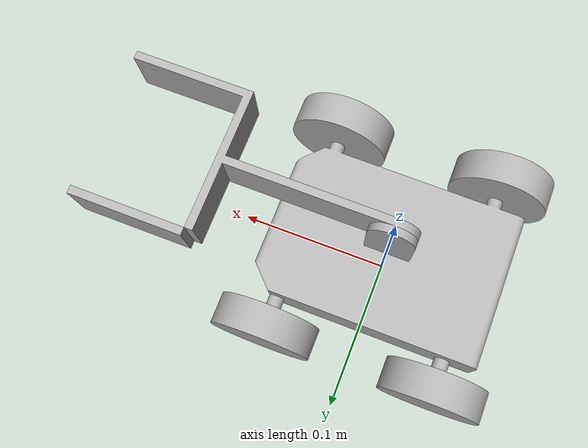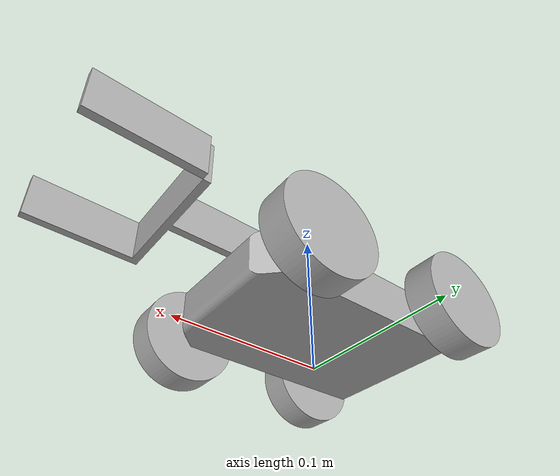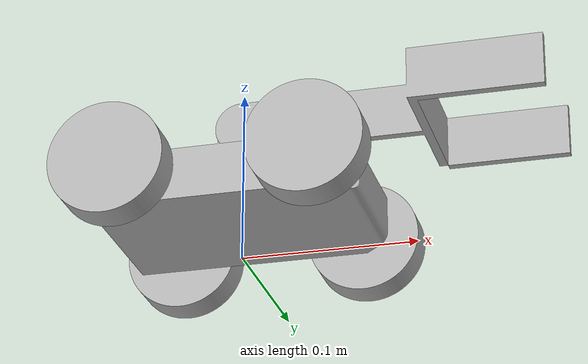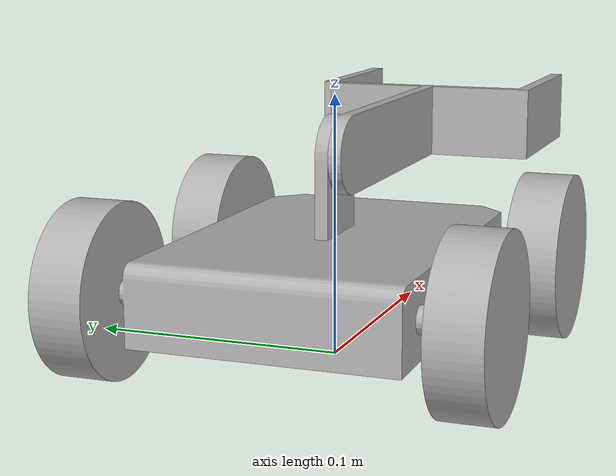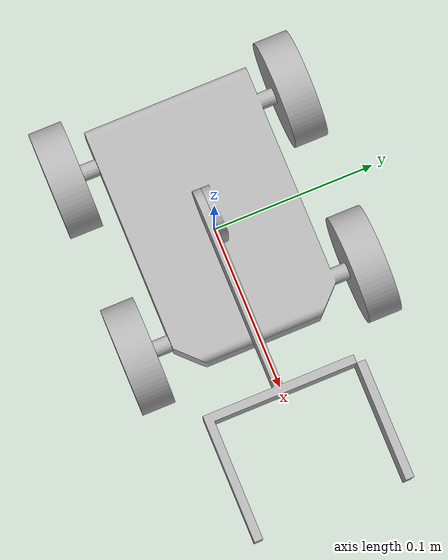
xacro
<?xml version="1.0" ?>
<robot name="gripper_bot" xmlns:xacro="http://www.ros.org/wiki/xacro">

<xacro:include filename="$(find gripper_bot_description)/urdf/materials.xacro" />
<xacro:include filename="$(find gripper_bot_description)/urdf/gripper_bot.trans" />
<xacro:include filename="$(find gripper_bot_description)/urdf/gripper_bot.gazebo" />

<link name="base_link">
  <inertial>
    <origin rpy="0 0 0" xyz="-0.0010858767785774308 0.0 0.03298371454211855"/>
    <mass value="0.245532854994658"/>
    <inertia ixx="0.000224" ixy="0.0" ixz="-0.0" iyy="0.000465" iyz="-0.0" izz="0.000643"/>
  </inertial>
  <visual>
    <origin rpy="0 0 0" xyz="0 0 0"/>
    <geometry>
      <mesh filename="package://gripper_bot_description/meshes/base_link.stl" scale="0.001 0.001 0.001"/>
    </geometry>
    <material name="silver"/>
  </visual>
  <collision>
    <origin rpy="0 0 0" xyz="0 0 0"/>
    <geometry>
      <mesh filename="package://gripper_bot_description/meshes/base_link.stl" scale="0.001 0.001 0.001"/>
    </geometry>
  </collision>
</link>

<link name="wheel_rb_1">
  <inertial>
    <origin rpy="0 0 0" xyz="-2.0816681711721685e-17 -0.010000000000000009 -6.938893903907228e-18"/>
    <mass value="0.061720514670588485"/>
    <inertia ixx="1.8e-05" ixy="0.0" ixz="-0.0" iyy="3.3e-05" iyz="0.0" izz="1.8e-05"/>
  </inertial>
  <visual>
    <origin rpy="0 0 0" xyz="0.055 0.06 -0.0325"/>
    <geometry>
      <mesh filename="package://gripper_bot_description/meshes/wheel_rb_1.stl" scale="0.001 0.001 0.001"/>
    </geometry>
    <material name="silver"/>
  </visual>
  <collision>
    <origin rpy="0 0 0" xyz="0.055 0.06 -0.0325"/>
    <geometry>
      <mesh filename="package://gripper_bot_description/meshes/wheel_rb_1.stl" scale="0.001 0.001 0.001"/>
    </geometry>
  </collision>
</link>

<link name="wheel_rf_1">
  <inertial>
    <origin rpy="0 0 0" xyz="0.0 -0.010000000000000009 -6.938893903907228e-18"/>
    <mass value="0.061720514670588485"/>
    <inertia ixx="1.8e-05" ixy="-0.0" ixz="0.0" iyy="3.3e-05" iyz="0.0" izz="1.8e-05"/>
  </inertial>
  <visual>
    <origin rpy="0 0 0" xyz="-0.055 0.06 -0.0325"/>
    <geometry>
      <mesh filename="package://gripper_bot_description/meshes/wheel_rf_1.stl" scale="0.001 0.001 0.001"/>
    </geometry>
    <material name="silver"/>
  </visual>
  <collision>
    <origin rpy="0 0 0" xyz="-0.055 0.06 -0.0325"/>
    <geometry>
      <mesh filename="package://gripper_bot_description/meshes/wheel_rf_1.stl" scale="0.001 0.001 0.001"/>
    </geometry>
  </collision>
</link>

<link name="wheel_lb_1">
  <inertial>
    <origin rpy="0 0 0" xyz="-2.0816681711721685e-17 0.010000000000000009 -6.938893903907228e-18"/>
    <mass value="0.061720514670588485"/>
    <inertia ixx="1.8e-05" ixy="-0.0" ixz="-0.0" iyy="3.3e-05" iyz="0.0" izz="1.8e-05"/>
  </inertial>
  <visual>
    <origin rpy="0 0 0" xyz="0.055 -0.06 -0.0325"/>
    <geometry>
      <mesh filename="package://gripper_bot_description/meshes/wheel_lb_1.stl" scale="0.001 0.001 0.001"/>
    </geometry>
    <material name="silver"/>
  </visual>
  <collision>
    <origin rpy="0 0 0" xyz="0.055 -0.06 -0.0325"/>
    <geometry>
      <mesh filename="package://gripper_bot_description/meshes/wheel_lb_1.stl" scale="0.001 0.001 0.001"/>
    </geometry>
  </collision>
</link>

<link name="wheel_lf_1">
  <inertial>
    <origin rpy="0 0 0" xyz="0.0 0.010000000000000009 -6.938893903907228e-18"/>
    <mass value="0.061720514670588485"/>
    <inertia ixx="1.8e-05" ixy="0.0" ixz="0.0" iyy="3.3e-05" iyz="0.0" izz="1.8e-05"/>
  </inertial>
  <visual>
    <origin rpy="0 0 0" xyz="-0.055 -0.06 -0.0325"/>
    <geometry>
      <mesh filename="package://gripper_bot_description/meshes/wheel_lf_1.stl" scale="0.001 0.001 0.001"/>
    </geometry>
    <material name="silver"/>
  </visual>
  <collision>
    <origin rpy="0 0 0" xyz="-0.055 -0.06 -0.0325"/>
    <geometry>
      <mesh filename="package://gripper_bot_description/meshes/wheel_lf_1.stl" scale="0.001 0.001 0.001"/>
    </geometry>
  </collision>
</link>

<link name="arm_1">
  <inertial>
    <origin rpy="0 0 0" xyz="0.09127253140378296 -0.013248571239040248 -2.7755575615628914e-17"/>
    <mass value="0.04400817461970293"/>
    <inertia ixx="2.8e-05" ixy="2.5e-05" ixz="0.0" iyy="0.000102" iyz="0.0" izz="0.000124"/>
  </inertial>
  <visual>
    <origin rpy="0 0 0" xyz="-0.0 0.0025 -0.0775"/>
    <geometry>
      <mesh filename="package://gripper_bot_description/meshes/arm_1.stl" scale="0.001 0.001 0.001"/>
    </geometry>
    <material name="silver"/>
  </visual>
  <collision>
    <origin rpy="0 0 0" xyz="-0.0 0.0025 -0.0775"/>
    <geometry>
      <mesh filename="package://gripper_bot_description/meshes/arm_1.stl" scale="0.001 0.001 0.001"/>
    </geometry>
  </collision>
</link>

<link name="gripper_1">
  <inertial>
    <origin rpy="0 0 0" xyz="0.03499999999999999 0.002500000000000023 -0.015000000000000027"/>
    <mass value="0.01112999999999996"/>
    <inertia ixx="1e-06" ixy="-0.0" ixz="0.0" iyy="5e-06" iyz="-0.0" izz="5e-06"/>
  </inertial>
  <visual>
    <origin rpy="0 0 0" xyz="-0.11 -0.04 -0.0925"/>
    <geometry>
      <mesh filename="package://gripper_bot_description/meshes/gripper_1.stl" scale="0.001 0.001 0.001"/>
    </geometry>
    <material name="silver"/>
  </visual>
  <collision>
    <origin rpy="0 0 0" xyz="-0.11 -0.04 -0.0925"/>
    <geometry>
      <mesh filename="package://gripper_bot_description/meshes/gripper_1.stl" scale="0.001 0.001 0.001"/>
    </geometry>
  </collision>
</link>

<joint name="rb_joint" type="continuous">
  <origin rpy="0 0 0" xyz="-0.055 -0.06 0.0325"/>
  <parent link="base_link"/>
  <child link="wheel_rb_1"/>
  <axis xyz="0.0 1.0 0.0"/>
</joint>

<joint name="rf_joint" type="continuous">
  <origin rpy="0 0 0" xyz="0.055 -0.06 0.0325"/>
  <parent link="base_link"/>
  <child link="wheel_rf_1"/>
  <axis xyz="0.0 1.0 0.0"/>
</joint>

<joint name="lb_joint" type="continuous">
  <origin rpy="0 0 0" xyz="-0.055 0.06 0.0325"/>
  <parent link="base_link"/>
  <child link="wheel_lb_1"/>
  <axis xyz="0.0 1.0 0.0"/>
</joint>

<joint name="lf_joint" type="continuous">
  <origin rpy="0 0 0" xyz="0.055 0.06 0.0325"/>
  <parent link="base_link"/>
  <child link="wheel_lf_1"/>
  <axis xyz="0.0 1.0 0.0"/>
</joint>

<joint name="arm_joint" type="revolute">
  <origin rpy="0 0 0" xyz="0.0 -0.0025 0.0775"/>
  <parent link="base_link"/>
  <child link="arm_1"/>
  <axis xyz="0.0 -1.0 0.0"/>
  <limit effort="100" lower="-0.174533" upper="1.570796" velocity="100"/>
</joint>

<joint name="gripper_joint" type="revolute">
  <origin rpy="0 0 0" xyz="0.11 0.0425 0.015"/>
  <parent link="arm_1"/>
  <child link="gripper_1"/>
  <axis xyz="0.0 0.0 1.0"/>
  <limit effort="100" lower="0.0" upper="1.570796" velocity="100"/>
</joint>

</robot>

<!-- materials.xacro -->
<robot name="gripper_bot" xmlns:xacro="http://www.ros.org/wiki/xacro" >

<material name="silver">
  <color rgba="0.700 0.700 0.700 1.000"/>
</material>

</robot>

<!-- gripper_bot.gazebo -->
<robot name="gripper_bot" xmlns:xacro="http://www.ros.org/wiki/xacro" >

<xacro:property name="body_color" value="Gazebo/Orange" />
<xacro:property name="wheel_color" value="Gazebo/Black" />
<xacro:property name="arm_color" value="Gazebo/Blue" />

<gazebo>
  <plugin filename="libgazebo_ros_control.so" name="gazebo_ros_control">
    <robotNamespace>/gripper_bot</robotNamespace>
    <robotSimType>gazebo_ros_control/DefaultRobotHWSim</robotSimType>
    <legacyModeNS>true</legacyModeNS>
  </plugin>
</gazebo>

<gazebo reference="base_link">
  <material>${body_color}</material>
  <mu1>0.2</mu1>
  <mu2>0.2</mu2>
  <selfCollide>true</selfCollide>
  <gravity>true</gravity>
</gazebo>

<gazebo reference="wheel_rb_1">
  <material>${wheel_color}</material>
  <mu1>60</mu1>
  <mu2>60</mu2>
  <selfCollide>true</selfCollide>
</gazebo>

<gazebo reference="wheel_rf_1">
  <material>${wheel_color}</material>
  <mu1>60</mu1>
  <mu2>60</mu2>
  <selfCollide>true</selfCollide>
</gazebo>

<gazebo reference="wheel_lb_1">
  <material>${wheel_color}</material>
  <mu1>60</mu1>
  <mu2>60</mu2>
  <selfCollide>true</selfCollide>
</gazebo>

<gazebo reference="wheel_lf_1">
  <material>${wheel_color}</material>
  <mu1>60</mu1>
  <mu2>60</mu2>
  <selfCollide>true</selfCollide>
</gazebo>

<gazebo reference="arm_1">
  <material>${arm_color}</material>
  <mu1>200</mu1>
  <mu2>200</mu2>
  <selfCollide>true</selfCollide>
</gazebo>

<gazebo reference="gripper_1">
  <material>${arm_color}</material>
  <mu1>200</mu1>
  <mu2>200</mu2>
  <selfCollide>true</selfCollide>
</gazebo>

<gazebo>
  <plugin name="skid_steer_drive_controller" filename="libgazebo_ros_skid_steer_drive.so">
    <updateRate>100.0</updateRate>
    <robotNamespace>/</robotNamespace>
    <leftFrontJoint>lf_joint</leftFrontJoint>
    <rightFrontJoint>rf_joint</rightFrontJoint>
    <leftRearJoint>lb_joint</leftRearJoint>
    <rightRearJoint>rb_joint</rightRearJoint>
    <wheelSeparation>0.12</wheelSeparation>
    <wheelDiameter>0.065</wheelDiameter>
    <robotBaseFrame>base_link</robotBaseFrame>
    <torque>20</torque>
    <topicName>cmd_vel</topicName>
    <broadcastTF>false</broadcastTF>
  </plugin>
</gazebo>

</robot>
